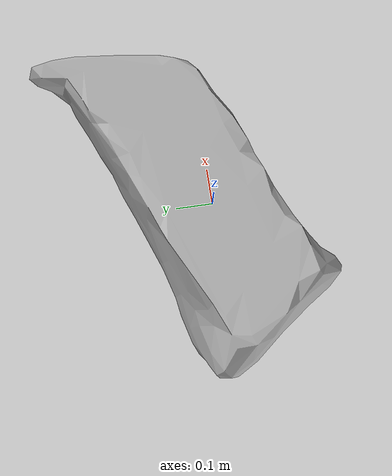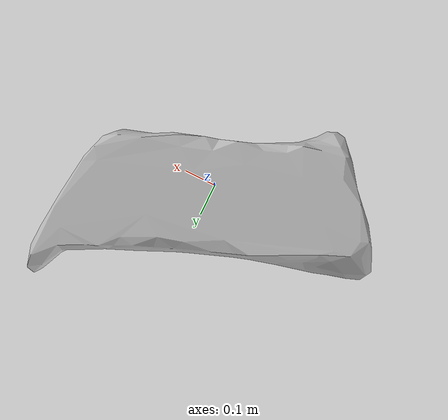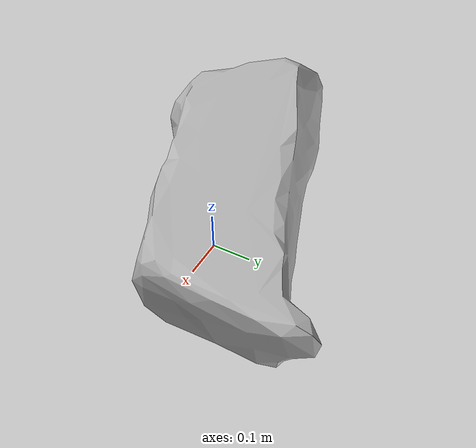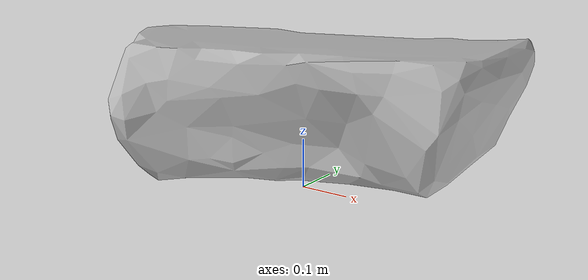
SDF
<?xml version="1.0" ?>
<sdf version="1.4">
    <model name="stone3">
      <pose>0 0 0 0 0 0</pose>
        <static>false</static>
	  <link name="stone3_link">
	    <collision name="stone3_collision">
	      <geometry>
                <mesh>
		  <uri>model://stone3/meshes/Intresto_rock_for_landscape_03.dae</uri>
                    <scale>2 2 2</scale>
		</mesh>
	      </geometry>
	    </collision>

	    <visual name="stone3_visual">
	      <geometry>
            	<mesh>
		  <uri>model://stone3/meshes/Intresto_rock_for_landscape_03.dae</uri>
                  <scale>2 2 2</scale>
		</mesh>
	      </geometry>
	    </visual>

    </link>
  </model>
</sdf>
